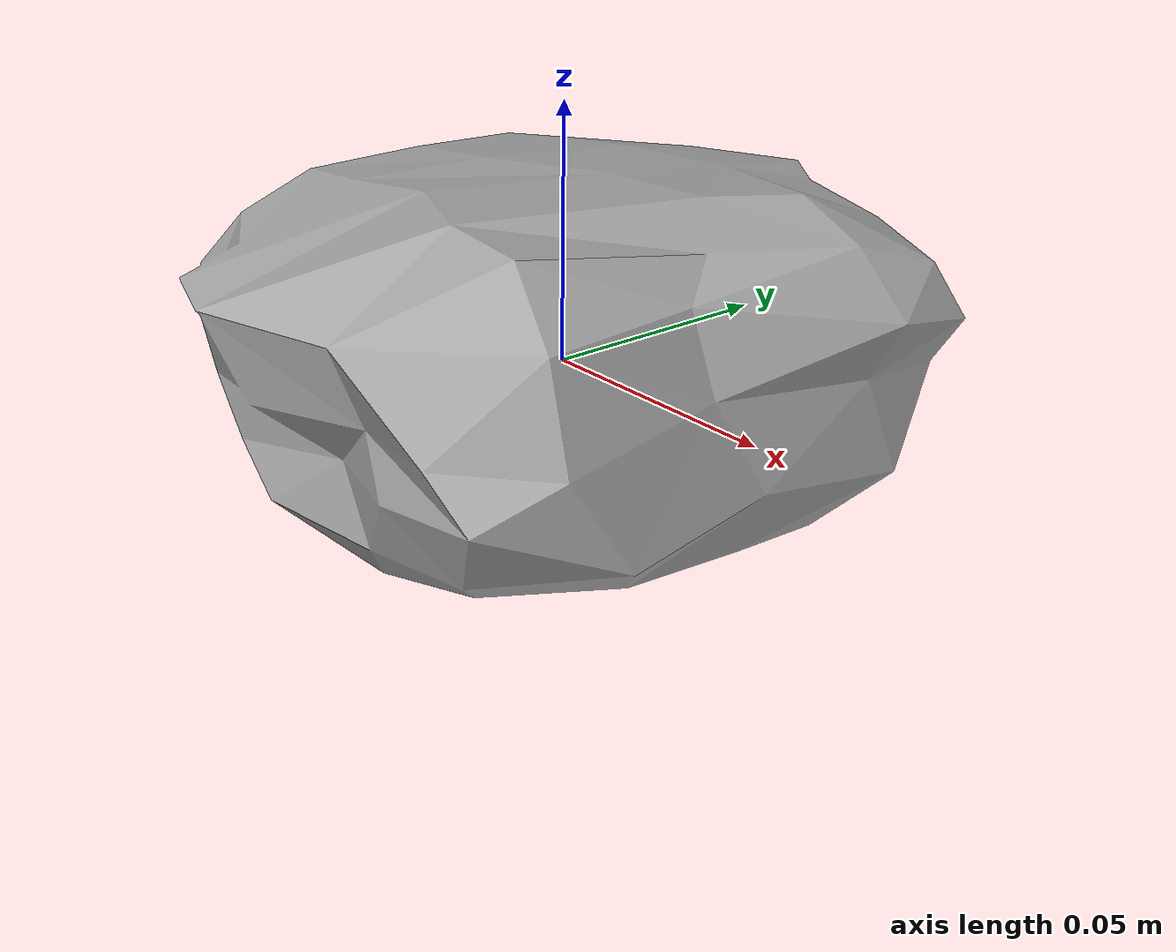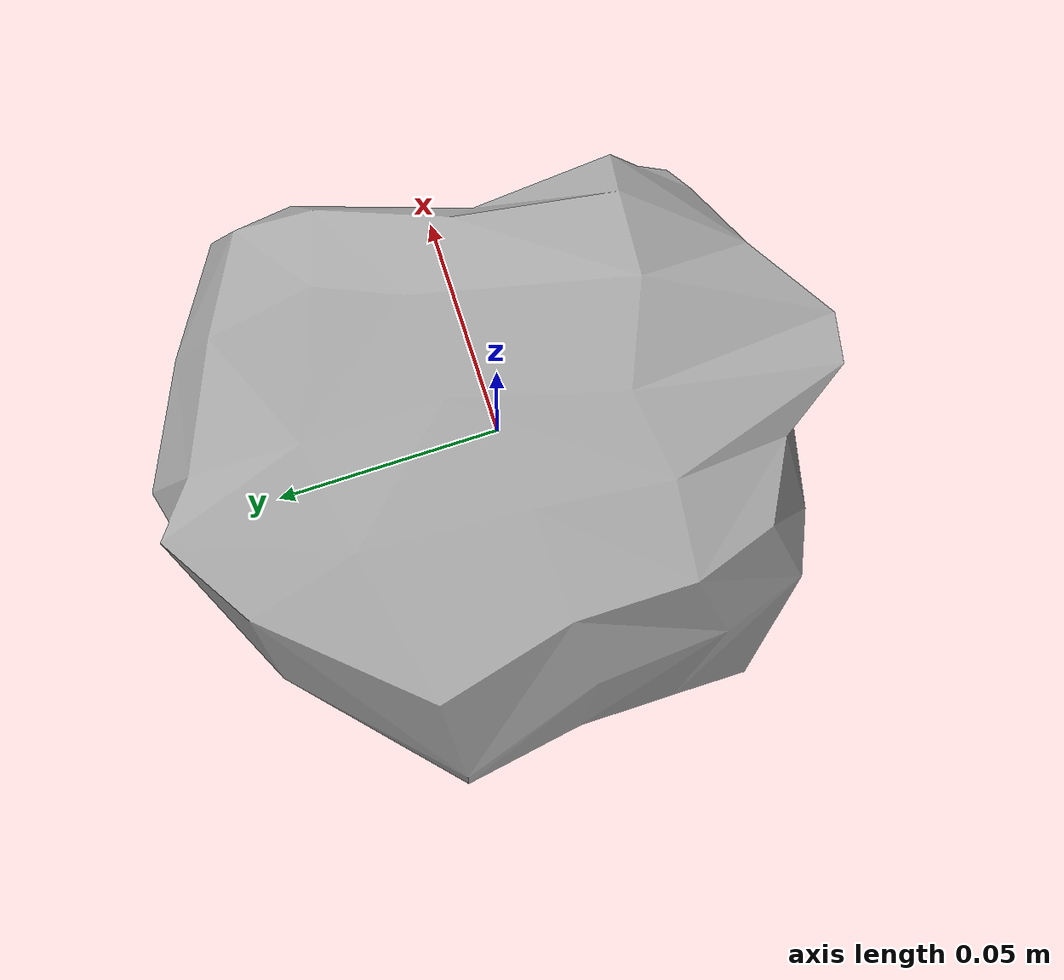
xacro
<?xml version="1.0" encoding="utf-8"?>

<robot name="rock" xmlns:xacro="http://www.ros.org/wiki/xacro">
<xacro:include filename="$(find khm2_description)/urdf/macro.xacro"/>

<link name="rock_link">
  <visual>
    <origin rpy="0 0 0" xyz="0 0 0"/>
    <geometry>
      <mesh filename="package://khm2_description/models/Rock1.dae"/>
    </geometry>
  </visual>
  <collision>
    <geometry>
      <mesh filename="package://khm2_description/models/Rock1.dae"/>
    </geometry>
  </collision>
    <inertial>
    <mass value="1"/>
    <origin xyz="0 0 0"/>
    <xacro:box_inertia m="1" x="1" y="1" z="0"/>
  </inertial>
</link>

<gazebo>
    <static>true</static>
</gazebo>

</robot>

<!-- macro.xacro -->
<robot xmlns:xacro="http://www.ros.org/wiki/xacro" name="macros">

<xacro:macro name="box_inertia" params="m x y z">
  <inertia  ixx="${m*(y*y+z*z)/12}" ixy = "0" ixz = "0"
            iyy="${m*(x*x+z*z)/12}" iyz = "0"
            izz="${m*(x*x+z*z)/12}"/>
</xacro:macro>

<xacro:macro name="cylinder_inertia" params="m r h">
  <inertia    ixx="${m*(3*r*r+h*h)/12}" ixy = "0" ixz = "0"
              iyy="${m*(3*r*r+h*h)/12}" iyz = "0"
              izz="${m*r*r/2}"/>
</xacro:macro>

</robot>
